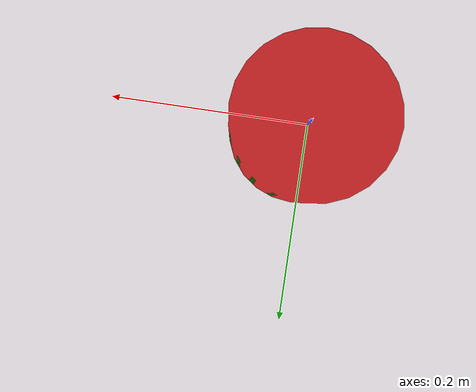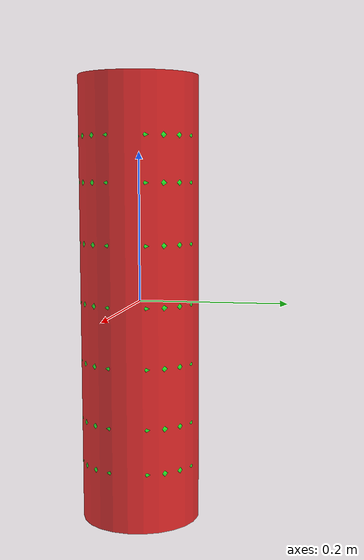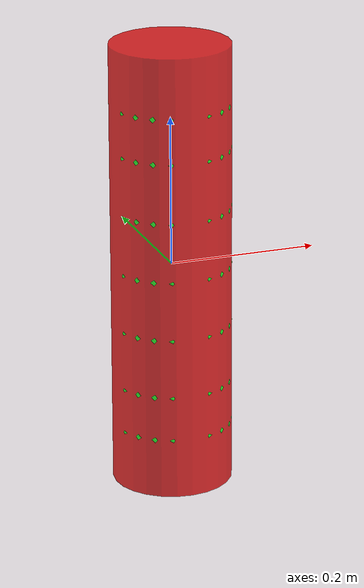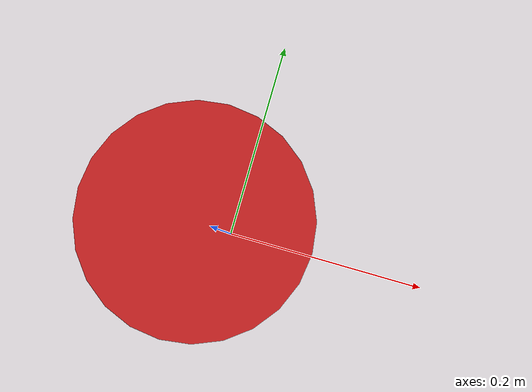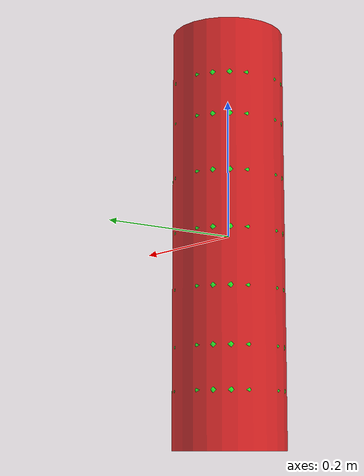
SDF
<?xml version="1.0"?>
<sdf version="1.7">
  <model name="rolled_yoga_mat">

    <!-- This is a model of an 3D printed cube. -->
    <!-- The model for a solid cube of uniform density. -->
    <link name="mat">
      <inertial>
        <mass>0.55</mass>
        <inertia>
          <ixx>0.02838</ixx>
          <ixy>0</ixy>
          <ixz>0</ixz>
          <iyy>0.02838</iyy>
          <iyz>0</iyz>
          <izz>0.00176</izz>
        </inertia>
      </inertial>

      <visual name="mat_visual">
        <geometry>
          <cylinder>
            <radius>0.08</radius>
            <length>0.6</length>
          </cylinder>
        </geometry>
        <material>
          <diffuse>0.9 0.0 0.0 0.8</diffuse>
        </material>
      </visual>

      <collision name="collision1">
        <pose>0 0 0 0 0 0</pose>
        <geometry>
          <sphere>
            <radius>0.08</radius>
          </sphere>
        </geometry>
        <surface>
          <friction>
            <ode>
              <mu>0.5</mu>
              <mu2>0.5</mu2>
            </ode>
          </friction>
        </surface>
      </collision>
      <visual name="visual1">
        <pose>0 0 0 0 0 0</pose>
        <geometry>
          <sphere>
            <radius>0.08</radius>
          </sphere>
        </geometry>
        <material>
          <diffuse>0 1 0 0.8</diffuse>
        </material>
      </visual>

      <collision name="collision2">
        <pose>0 0 0.08 0 0 0</pose>
        <geometry>
          <sphere>
            <radius>0.08</radius>
          </sphere>
        </geometry>
        <surface>
          <friction>
            <ode>
              <mu>0.5</mu>
              <mu2>0.5</mu2>
            </ode>
          </friction>
        </surface>
      </collision>
      <visual name="visual2">
        <pose>0 0 0.08 0 0 0</pose>
        <geometry>
          <sphere>
            <radius>0.08</radius>
          </sphere>
        </geometry>
        <material>
          <diffuse>0 1 0 0.8</diffuse>
        </material>
      </visual>

      <collision name="collision3">
        <pose>0 0 0.16 0 0 0</pose>
        <geometry>
          <sphere>
            <radius>0.08</radius>
          </sphere>
        </geometry>
        <surface>
          <friction>
            <ode>
              <mu>0.5</mu>
              <mu2>0.5</mu2>
            </ode>
          </friction>
        </surface>
      </collision>
      <visual name="visual3">
        <pose>0 0 0.16 0 0 0</pose>
        <geometry>
          <sphere>
            <radius>0.08</radius>
          </sphere>
        </geometry>
        <material>
          <diffuse>0 1 0 0.8</diffuse>
        </material>
      </visual>

      <collision name="collision4">
        <pose>0 0 0.22 0 0 0</pose>
        <geometry>
          <sphere>
            <radius>0.08</radius>
          </sphere>
        </geometry>
        <surface>
          <friction>
            <ode>
              <mu>0.5</mu>
              <mu2>0.5</mu2>
            </ode>
          </friction>
        </surface>
      </collision>
      <visual name="visual4">
        <pose>0 0 0.22 0 0 0</pose>
        <geometry>
          <sphere>
            <radius>0.08</radius>
          </sphere>
        </geometry>
        <material>
          <diffuse>0 1 0 0.8</diffuse>
        </material>
      </visual>

      <collision name="collision5">
        <pose>0 0 -0.08 0 0 0</pose>
        <geometry>
          <sphere>
            <radius>0.08</radius>
          </sphere>
        </geometry>
        <surface>
          <friction>
            <ode>
              <mu>0.5</mu>
              <mu2>0.5</mu2>
            </ode>
          </friction>
        </surface>
      </collision>
      <visual name="visual5">
        <pose>0 0 -0.08 0 0 0</pose>
        <geometry>
          <sphere>
            <radius>0.08</radius>
          </sphere>
        </geometry>
        <material>
          <diffuse>0 1 0 0.8</diffuse>
        </material>
      </visual>

      <collision name="collision6">
        <pose>0 0 -0.16 0 0 0</pose>
        <geometry>
          <sphere>
            <radius>0.08</radius>
          </sphere>
        </geometry>
        <surface>
          <friction>
            <ode>
              <mu>0.5</mu>
              <mu2>0.5</mu2>
            </ode>
          </friction>
        </surface>
      </collision>
      <visual name="visual6">
        <pose>0 0 -0.16 0 0 0</pose>
        <geometry>
          <sphere>
            <radius>0.08</radius>
          </sphere>
        </geometry>
        <material>
          <diffuse>0 1 0 0.8</diffuse>
        </material>
      </visual>

      <collision name="collision7">
        <pose>0 0 -0.22 0 0 0</pose>
        <geometry>
          <sphere>
            <radius>0.08</radius>
          </sphere>
        </geometry>
        <surface>
          <friction>
            <ode>
              <mu>0.5</mu>
              <mu2>0.5</mu2>
            </ode>
          </friction>
        </surface>
      </collision>
      <visual name="visual7">
        <pose>0 0 -0.22 0 0 0</pose>
        <geometry>
          <sphere>
            <radius>0.08</radius>
          </sphere>
        </geometry>
        <material>
          <diffuse>0 1 0 0.8</diffuse>
        </material>
      </visual>

    </link>
  </model>
</sdf>
